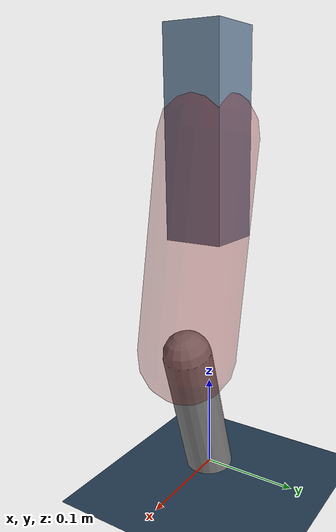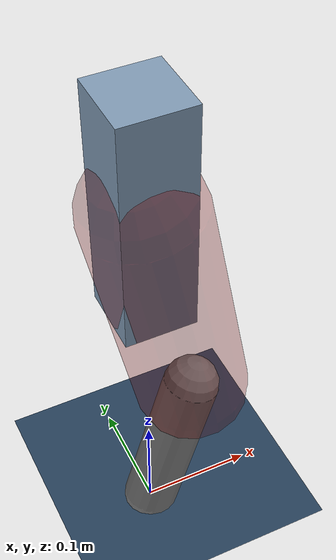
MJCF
<mujoco model="Hopper2D">
	<compiler inertiafromgeom="true" angle="radian" />
	<option timestep="0.001" integrator="implicit" cone="elliptic" solver="Newton" tolerance="1e-10" />

	<default>
		<geom contype="1" conaffinity="1" condim="3" friction="2 0.005 0.0001" solref="0.005 1" />
		<joint limited="true" damping="0.1" />
	</default>

	<asset>
		<texture name="skybox" type="skybox" builtin="gradient" rgb1=".4 .6 .8" rgb2="0 0 0" width="800" height="800" />
		<texture name="grid" type="2d" builtin="checker" rgb1=".1 .2 .3" rgb2=".2 .3 .4" width="300" height="300" mark="edge" markrgb=".2 .3 .4" />
		<material name="ground" texture="grid" texrepeat="1 1" texuniform="true" reflectance="0.1" />
		<material name="leg" rgba="0.5 0.6 0.7 1" />
	</asset>

	<worldbody>

		<geom name="floor" type="plane" size="5 5 0.25" material="ground" />

		<light directional="false" diffuse="0.8 0.8 0.8" specular="0.3 0.3 0.3" pos="0 0 2" dir="0 0 -1" />
		<light mode="targetbodycom" target="base" directional="false" diffuse="0.8 0.8 0.8" specular="0.3 0.3 0.3" pos="0 0 2" dir="0 0 -1" />

		<camera name="fixed" pos="0 -2 1" xyaxes="1 0 0 0 0 1" />
		<camera name="tracking" mode="trackcom" pos="0 -3 1" />

		<body name="root" pos="0 0 0.3574602494946062">
			<joint name="slide_x" type="slide" axis="1 0 0" range="-100 100" />
			<joint name="slide_z" type="slide" axis="0 0 1" range="0 10" />

			<body name="base" pos="0 0 0">
				<geom name="torso" type="box" size="0.03 0.03 0.1" mass="2.55" material="leg" />

				<body name="link1" pos="0 0 0" euler="0 1.3762211167332845 0">
					<joint type="hinge" axis="0 -1 0" pos="0 0 0" name="hinge1" limited="true" range="-3.14 3.14" stiffness="0" damping="0.1" />
					<geom name="thigh" type="capsule" fromto="0 0 0 0.2164547366036819 0 0" size="0.05" rgba="0.5 0 0 0.3" mass="0.7707368415092047" />

					<body name="link2" pos="0.2164547366036819 0 0" euler="0 0.47540389913806574 0">
						<joint type="hinge" axis="0 -1 0" pos="0 0 0" name="hinge2" limited="true" range="-3.14 3.14" stiffness="0" damping="0.1" />
						<geom name="shank" type="capsule" fromto="0 0 0 0.15100551289092431 0 0" size="0.025" mass="0.35860496160183186" />

					</body>
				</body>
			</body>
		</body>
	</worldbody>

	<actuator>
		<motor name="torque1" joint="hinge1" ctrlrange="-83.61430792574852 83.61430792574852" ctrllimited="true" gear="1" />
		<motor name="torque2" joint="hinge2" ctrlrange="-98.4228974872231 98.4228974872231" ctrllimited="true" gear="1" />
	</actuator>
</mujoco>
